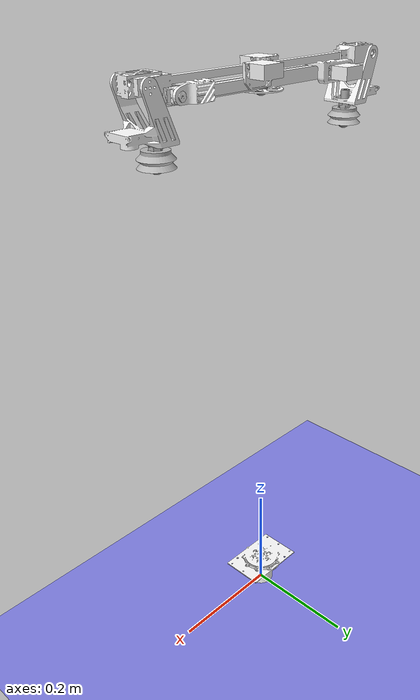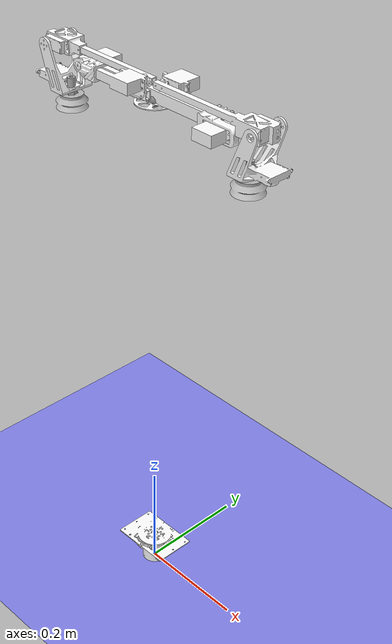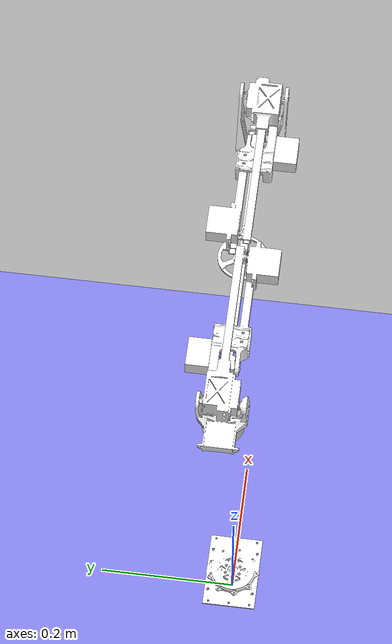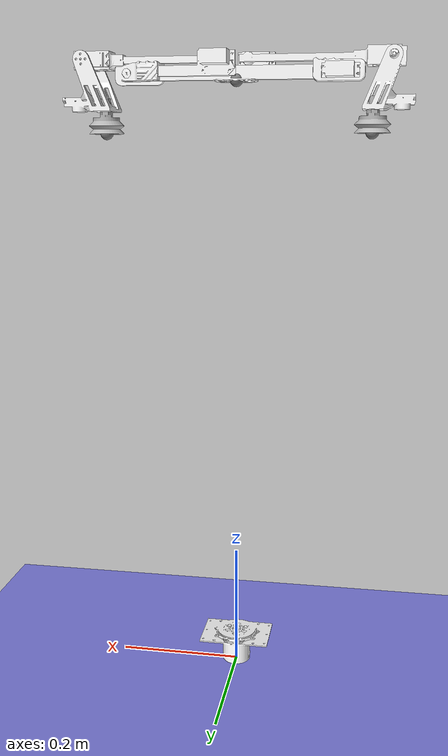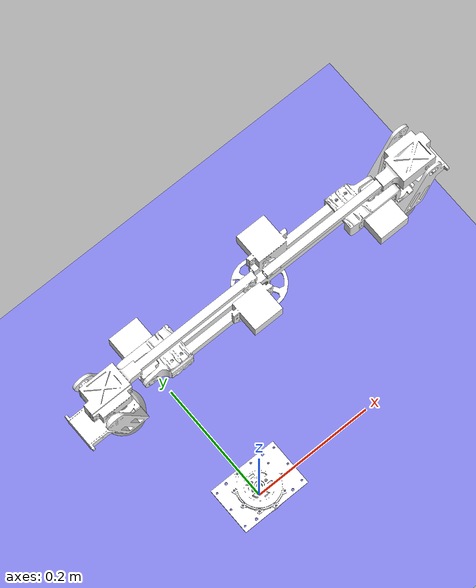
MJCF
<mujoco model="robotic_arm_scene">
  <option gravity="0 0 -9.81"/>
  <include file="arm4.xml"/>

  <statistic center="0.35 0 1.25" extent="1.2"/>

  <visual>
    <headlight diffuse="0.2 0.2 0.2" ambient="0.35 0.35 0.35" specular="0.1 0.1 0.1"/>
    <rgba haze="0 0 0 0"/>
    <global offwidth="1920" offheight="1080"/>
  </visual>

  <default>
    <geom group="2" rgba="0.5 0.5 0.9 0.35"/>
  </default>

  <asset>
    <texture type="skybox" builtin="gradient" rgb1="0.35 0.55 0.75" rgb2="0.05 0.08 0.1" width="512" height="3072"/>
    <texture type="2d" name="groundplane" builtin="checker" mark="edge" rgb1="0.2 0.25 0.3" rgb2="0.12 0.16 0.2"
      markrgb="0.8 0.8 0.8" width="300" height="300"/>
    <material name="groundplane" texture="groundplane" texuniform="true" texrepeat="5 5" reflectance="0.2"/>
  </asset>

  <worldbody>
    <geom name="ground" type="plane" size="50 50 0.3" pos="0 0 0" material="groundplane" contype="1" conaffinity="1"/>
    <light name="main_light" pos="0 0 4" dir="0 0 -1" directional="true"/>

  </worldbody>
</mujoco>

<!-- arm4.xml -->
<mujoco model="arm">
  <compiler angle="radian"/>

  <asset>
    <mesh name="base_link" file="base_link.STL"/>
    <mesh name="yuntai" file="yuntai.STL"/>
    <mesh name="left1" file="left1.STL"/>
    <mesh name="left2" file="left2.STL"/>
    <mesh name="left3" file="left3.STL"/>
    <mesh name="left4" file="left4.STL"/>
    <mesh name="right1" file="right1.STL"/>
    <mesh name="right2" file="right2.STL"/>
    <mesh name="right3" file="right3.STL"/>
    <mesh name="right4" file="right4.STL"/>
  </asset>

  <worldbody>
    <site name="base_imu_site" pos="0 0 0.9565" size="0.01"/>
    <geom type="mesh" rgba="1 1 1 1" mesh="base_link"/>
    <body name="yuntai" pos="0 0 0.9565">
      <inertial pos="4.79226e-05 4.64704e-06 0.00964529" quat="0.000129558 0.707107 -0.000129558 0.707107" mass="0.101244" diaginertia="0.000304592 0.000297591 1.42122e-05"/>
      <joint name="yuntai" pos="0 0 0" axis="0 0 -1" range="-3.14159 3.14159" actuatorfrcrange="-10 10"/>
      <geom type="mesh" rgba="1 1 1 1" mesh="yuntai"/>
      <body name="left1" pos="-0.165 0.00625 0.01" quat="0.707105 0.707108 0 0">
        <inertial pos="0.0866317 0.0108088 0.0203965" quat="0.464511 0.547842 0.496945 0.486974" mass="0.0724494" diaginertia="4.60084e-05 3.88633e-05 1.54283e-05"/>
        <joint name="left1" pos="0 0 0" axis="0 0 1" range="-3.14159 3.14159" actuatorfrcrange="-10 10"/>
        <geom type="mesh" rgba="1 1 1 1" mesh="left1"/>
        <body name="left2" pos="0.14795 0.02 0.00935" quat="-3.67321e-06 0 0 -1">
          <inertial pos="0.178348 -8.40191e-10 -0.00507433" quat="0.498947 0.501051 0.501051 0.498947" mass="0.0594508" diaginertia="4.91263e-05 4.50325e-05 8.83655e-06"/>
          <joint name="left2" pos="0 0 0" axis="0 0 -1" range="-3.14159 3.14159" actuatorfrcrange="-10 10"/>
          <geom type="mesh" rgba="1 1 1 1" mesh="left2"/>
          <body name="left3" pos="0.213 0 0.0229" quat="0.707105 0 0 0.707108">
            <inertial pos="-0.00440119 0.0613952 0.00515946" quat="0.55238 0.718903 0.391768 0.156756" mass="0.170478" diaginertia="0.00107525 0.00106211 5.35082e-05"/>
            <joint name="left3" pos="0 0 0" axis="0 0 -1" range="-3.14159 3.14159" actuatorfrcrange="-10 10"/>
            <geom type="mesh" rgba="1 1 1 1" mesh="left3"/>
            <geom pos="0.1058 0.0275 -0.026" quat="-3.67321e-06 1 0 0" type="mesh" rgba="0.698039 0.698039 0.698039 1" mesh="left4"/>
            <site name="left_ee_site" pos="0.1058 0.0275 -0.026" quat="-3.67321e-06 1 0 0" size="0.01"/>
          </body>
        </body>
      </body>
      <body name="right1" pos="0.165 -0.00625 0.01" quat="-2.59734e-06 -2.59735e-06 0.707108 0.707105">
        <inertial pos="0.0866317 0.0108088 0.0203965" quat="0.464511 0.547842 0.496945 0.486974" mass="0.0724494" diaginertia="4.60084e-05 3.88633e-05 1.54283e-05"/>
        <joint name="right1" pos="0 0 0" axis="0 0 1" range="-3.14159 3.14159" actuatorfrcrange="-10 10"/>
        <geom type="mesh" rgba="1 1 1 1" mesh="right1"/>
        <body name="right2" pos="0.14795 0.02 0.00935" quat="1.34924e-11 3.67321e-06 1 3.67321e-06">
          <inertial pos="0.178348 1.31277e-09 0.00507433" quat="0.501051 0.498947 0.498947 0.501051" mass="0.0594508" diaginertia="4.91263e-05 4.50325e-05 8.83655e-06"/>
          <joint name="right2" pos="0 0 0" axis="0 0 1" range="-3.14159 3.14159" actuatorfrcrange="-10 10"/>
          <geom type="mesh" rgba="1 1 1 1" mesh="right2"/>
          <body name="right3" pos="0.213 0 -0.0229" quat="0.707105 0 0 -0.707108">
            <inertial pos="0.0258148 0.0613682 -0.00518317" quat="0.560609 0.496808 -0.207346 0.629212" mass="0.169727" diaginertia="0.000742559 0.000738367 6.41473e-05"/>
            <joint name="right3" pos="0 0 0" axis="0 0 1" range="-3.14159 3.14159" actuatorfrcrange="-10 10"/>
            <geom type="mesh" rgba="1 1 1 1" mesh="right3"/>
            <geom pos="0.1058 -0.0275 0.026" quat="0.707107 -0.707107 0 0" type="mesh" rgba="0.698039 0.698039 0.698039 1" mesh="right4"/>
            <site name="right_ee_site" pos="0.1058 -0.0275 0.026" quat="0.707107 -0.707107 0 0" size="0.01"/>
          </body>
        </body>
      </body>
    </body>
  </worldbody>

  <actuator>
    <motor name="yuntai_motor" joint="yuntai" gear="1" ctrllimited="true" ctrlrange="-10 10"/>
    <motor name="left1_motor" joint="left1" gear="1" ctrllimited="true" ctrlrange="-10 10"/>
    <motor name="left2_motor" joint="left2" gear="1" ctrllimited="true" ctrlrange="-10 10"/>
    <motor name="left3_motor" joint="left3" gear="1" ctrllimited="true" ctrlrange="-10 10"/>
    <motor name="right1_motor" joint="right1" gear="1" ctrllimited="true" ctrlrange="-10 10"/>
    <motor name="right2_motor" joint="right2" gear="1" ctrllimited="true" ctrlrange="-10 10"/>
    <motor name="right3_motor" joint="right3" gear="1" ctrllimited="true" ctrlrange="-10 10"/>
  </actuator>

  <sensor>
    <jointpos name="yuntai_pos" joint="yuntai"/>
    <jointpos name="left1_pos" joint="left1"/>
    <jointpos name="left2_pos" joint="left2"/>
    <jointpos name="left3_pos" joint="left3"/>
    <jointpos name="right1_pos" joint="right1"/>
    <jointpos name="right2_pos" joint="right2"/>
    <jointpos name="right3_pos" joint="right3"/>

    <jointvel name="yuntai_vel" joint="yuntai"/>
    <jointvel name="left1_vel" joint="left1"/>
    <jointvel name="left2_vel" joint="left2"/>
    <jointvel name="left3_vel" joint="left3"/>
    <jointvel name="right1_vel" joint="right1"/>
    <jointvel name="right2_vel" joint="right2"/>
    <jointvel name="right3_vel" joint="right3"/>

    <actuatorfrc name="yuntai_frc" actuator="yuntai_motor" noise="1e-3"/>
    <actuatorfrc name="left1_frc" actuator="left1_motor" noise="1e-3"/>
    <actuatorfrc name="left2_frc" actuator="left2_motor" noise="1e-3"/>
    <actuatorfrc name="left3_frc" actuator="left3_motor" noise="1e-3"/>
    <actuatorfrc name="right1_frc" actuator="right1_motor" noise="1e-3"/>
    <actuatorfrc name="right2_frc" actuator="right2_motor" noise="1e-3"/>
    <actuatorfrc name="right3_frc" actuator="right3_motor" noise="1e-3"/>

    <framepos name="left_ee_pos" objtype="site" objname="left_ee_site"/>
    <framequat name="left_ee_quat" objtype="site" objname="left_ee_site"/>
    <framepos name="right_ee_pos" objtype="site" objname="right_ee_site"/>
    <framequat name="right_ee_quat" objtype="site" objname="right_ee_site"/>
    <gyro name="base_gyro" site="base_imu_site"/>
    <accelerometer name="base_accel" site="base_imu_site"/>
  </sensor>
</mujoco>
